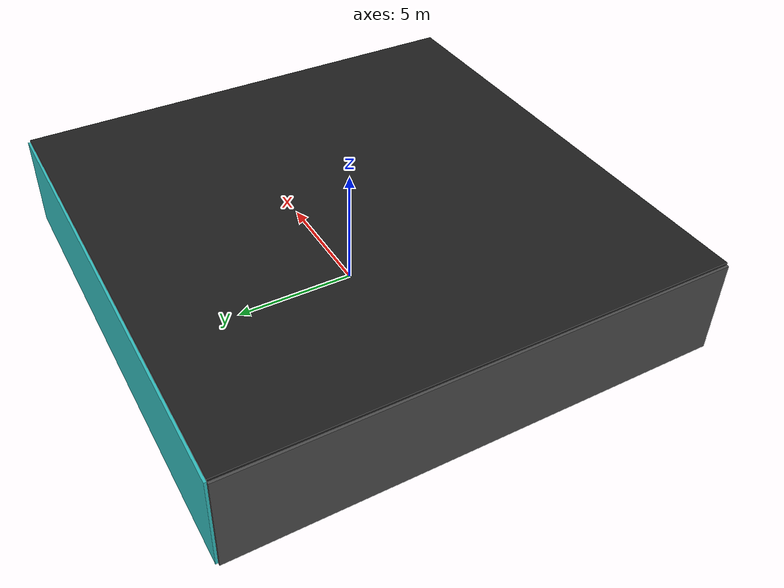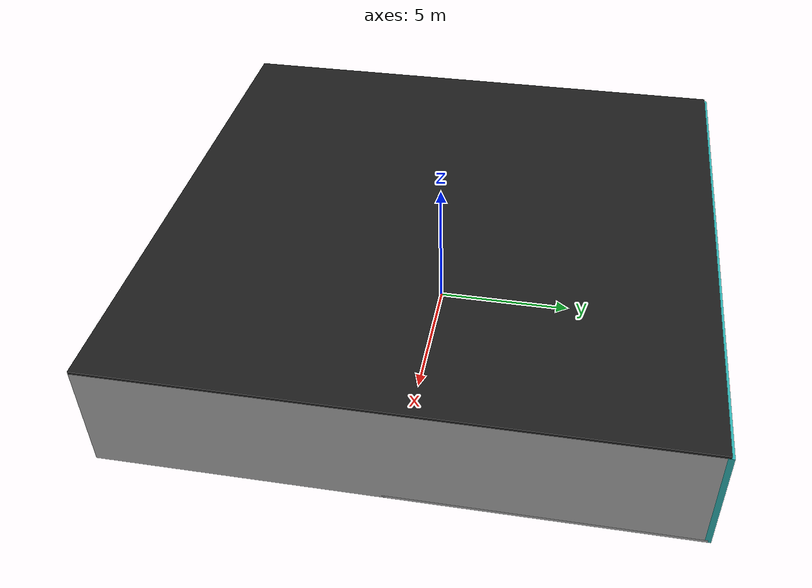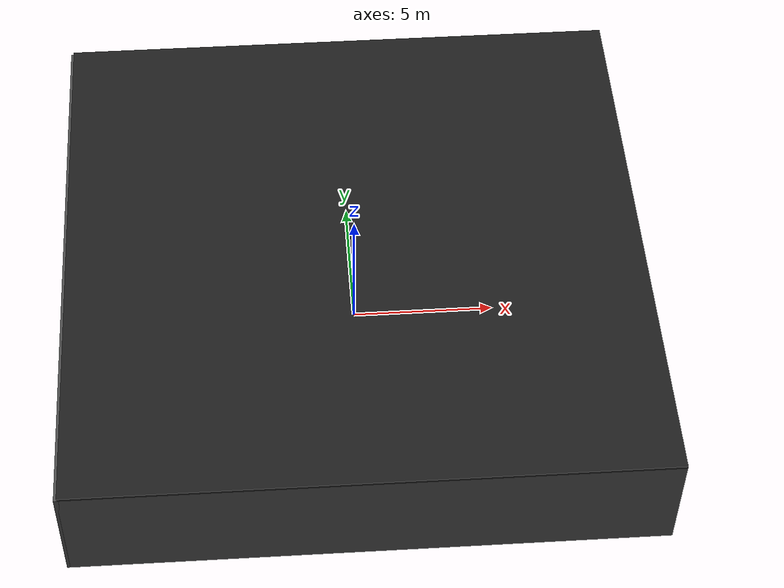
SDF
<sdf version="1.4">
 <world name="default">
  <physics type="ode">
   <max_step_size>0.001</max_step_size>
   <real_time_factor>1</real_time_factor>
   <real_time_update_rate>1000</real_time_update_rate>
   <gravity>0 0 -9.8</gravity>
  </physics>
  <scene><ambient>0.4 0.4 0.4 1</ambient><background>0.7 0.7 0.7 1</background><shadows>1</shadows></scene>
  <model name="Surrounding">
   <static>1</static>
   <link name="Ceiling">
    <collision name="Ceiling_Collision"><geometry><box><size>20 20 0.1</size></box></geometry></collision>
    <visual name="Ceiling_Visual">
     <geometry><box><size>20 20 0.1</size></box></geometry>
     <material>
      <script><uri>file://media/materials/scripts/gazebo.material</uri><name>Gazebo/Black</name></script>
     </material>
    </visual>
    <pose>0 0 4.05 0 0 0</pose>
   </link>
   <link name="Wall_South">
    <collision name="Wall_South_Collision">
     <geometry><box><size>20 0 4</size></box></geometry>
     <pose>0 0 2 0 -0 0</pose>
    </collision>
    <visual name="Wall_South_Visual">
     <pose>0 0 2 0 -0 0</pose>
     <geometry><box><size>20 0 4</size></box></geometry>
     <material>
      <script><uri>file://media/materials/scripts/gazebo.material</uri><name>Gazebo/DarkGrey</name></script>
     </material>
    </visual>
    <velocity_decay><linear>0</linear><angular>0</angular></velocity_decay>
    <pose>0 -10 0 0 -0 0</pose>
   </link>
   <link name="Wall_East">
    <collision name="Wall_21_Collision">
     <geometry><box><size>20 0 4</size></box></geometry>
     <pose>0 0 2 0 -0 0</pose>
    </collision>
    <visual name="Wall_21_Visual">
     <pose>0 0 2 0 -0 0</pose>
     <geometry><box><size>20 0 4</size></box></geometry>
     <material>
      <script><uri>file://media/materials/scripts/gazebo.material</uri><name>Gazebo/Pioneer2Body</name></script>
     </material>
    </visual>
    <velocity_decay><linear>0</linear><angular>0</angular></velocity_decay>
    <pose>10 0 0 0 -0 1.5708</pose>
   </link>
   <link name="Wall_North">
    <collision name="Wall_22_Collision">
     <geometry><box><size>20 0.2 4</size></box></geometry>
     <pose>0 0 2 0 -0 0</pose>
    </collision>
    <visual name="Wall_22_Visual">
     <pose>0 0 2 0 -0 0</pose>
     <geometry><box><size>20 0.2 4</size></box></geometry>
     <material>
      <script><uri>file://media/materials/scripts/gazebo.material</uri><name>Gazebo/Turquoise</name></script>
     </material>
    </visual>
    <velocity_decay><linear>0</linear><angular>0</angular></velocity_decay>
    <pose>0 10 0 0 -0 0</pose>
   </link>
   <link name="Wall_West">
    <collision name="Wall_23_Collision">
     <geometry><box><size>20 0.2 4</size></box></geometry>
     <pose>0 0 2 0 -0 0</pose>
    </collision>
    <visual name="Wall_23_Visual">
     <pose>0 0 2 0 -0 0</pose>
     <geometry><box><size>20 0.2 4</size></box></geometry>
     <material>
      <script><uri>file://media/materials/scripts/gazebo.material</uri><name>Gazebo/Road</name></script>
     </material>
    </visual>
    <velocity_decay><linear>0</linear><angular>0</angular></velocity_decay>
    <pose>-10 0 0 0 0 -1.5708</pose>
   </link>
   <link name="Ground_link">
    <collision name="collision">
     <pose>0 0 .05 0 -0 0</pose>
     <geometry><box><size>20 20 0.1</size></box></geometry>
    </collision>
    <visual name="visual">
     <pose>0 0 .05 0 -0 0</pose>
     <geometry><box><size>20 20 0.1</size></box></geometry>
     <material>
      <script><uri>file://media/materials/scripts/gazebo.material</uri><name>Gazebo/CloudySky</name></script>
     </material>
    </visual>
   </link>
   <static>1</static>
  </model>
  <spherical_coordinates>
   <surface_model>EARTH_WGS84</surface_model>
   <latitude_deg>0</latitude_deg>
   <longitude_deg>0</longitude_deg>
   <elevation>0</elevation>
   <heading_deg>0</heading_deg>
  </spherical_coordinates>
  <light name="lightball_0" type="diffuse">
   <diffuse>0.8 0.8 0.8 1</diffuse>
   <specular>0.2 0.2 0.2 1</specular>
   <attenuation>
    <range>100</range>
    <constant>0.7</constant>
    <linear>0.01</linear>
    <quadratic>0.001</quadratic>
   </attenuation>
   <direction>-0.5 0.1 -0.9</direction>
   <pose>-6.88804435154 2.95939451272 2.43655617378 0 0 0</pose>
  </light>
  <light name="lightball_1" type="diffuse">
   <diffuse>0.8 0.8 0.8 1</diffuse>
   <specular>0.2 0.2 0.2 1</specular>
   <attenuation>
    <range>100</range>
    <constant>0.7</constant>
    <linear>0.01</linear>
    <quadratic>0.001</quadratic>
   </attenuation>
   <direction>-0.5 0.1 -0.9</direction>
   <pose>-1.96618549936 -3.92178606714 0.653226356603 0 0 0</pose>
  </light>
  <light name="lightball_2" type="diffuse">
   <diffuse>0.8 0.8 0.8 1</diffuse>
   <specular>0.2 0.2 0.2 1</specular>
   <attenuation>
    <range>100</range>
    <constant>0.7</constant>
    <linear>0.01</linear>
    <quadratic>0.001</quadratic>
   </attenuation>
   <direction>-0.5 0.1 -0.9</direction>
   <pose>0.938429356033 6.35929345416 3.33739687591 0 0 0</pose>
  </light>
  <light name="lightball_3" type="diffuse">
   <diffuse>0.8 0.8 0.8 1</diffuse>
   <specular>0.2 0.2 0.2 1</specular>
   <attenuation>
    <range>100</range>
    <constant>0.7</constant>
    <linear>0.01</linear>
    <quadratic>0.001</quadratic>
   </attenuation>
   <direction>-0.5 0.1 -0.9</direction>
   <pose>-4.11267021039 5.80318109291 1.04351372374 0 0 0</pose>
  </light>
  <light name="lightball_4" type="diffuse">
   <diffuse>0.8 0.8 0.8 1</diffuse>
   <specular>0.2 0.2 0.2 1</specular>
   <attenuation>
    <range>100</range>
    <constant>0.7</constant>
    <linear>0.01</linear>
    <quadratic>0.001</quadratic>
   </attenuation>
   <direction>-0.5 0.1 -0.9</direction>
   <pose>7.05376744588 -7.37100750545 1.72425819936 0 0 0</pose>
  </light>
  <light name="lightball_5" type="diffuse">
   <diffuse>0.8 0.8 0.8 1</diffuse>
   <specular>0.2 0.2 0.2 1</specular>
   <attenuation>
    <range>100</range>
    <constant>0.7</constant>
    <linear>0.01</linear>
    <quadratic>0.001</quadratic>
   </attenuation>
   <direction>-0.5 0.1 -0.9</direction>
   <pose>0.886035826528 -0.76811675413 0.616291134655 0 0 0</pose>
  </light>
  <light name="lightball_6" type="diffuse">
   <diffuse>0.8 0.8 0.8 1</diffuse>
   <specular>0.2 0.2 0.2 1</specular>
   <attenuation>
    <range>100</range>
    <constant>0.7</constant>
    <linear>0.01</linear>
    <quadratic>0.001</quadratic>
   </attenuation>
   <direction>-0.5 0.1 -0.9</direction>
   <pose>2.97504494531 0.857251126162 3.00323591373 0 0 0</pose>
  </light>
  <light name="lightball_7" type="diffuse">
   <diffuse>0.8 0.8 0.8 1</diffuse>
   <specular>0.2 0.2 0.2 1</specular>
   <attenuation>
    <range>100</range>
    <constant>0.7</constant>
    <linear>0.01</linear>
    <quadratic>0.001</quadratic>
   </attenuation>
   <direction>-0.5 0.1 -0.9</direction>
   <pose>3.74305426944 -8.12828023312 0.901581456688 0 0 0</pose>
  </light>
  <light name="lightball_8" type="diffuse">
   <diffuse>0.8 0.8 0.8 1</diffuse>
   <specular>0.2 0.2 0.2 1</specular>
   <attenuation>
    <range>100</range>
    <constant>0.7</constant>
    <linear>0.01</linear>
    <quadratic>0.001</quadratic>
   </attenuation>
   <direction>-0.5 0.1 -0.9</direction>
   <pose>7.27380647711 6.53738159256 2.09553405814 0 0 0</pose>
  </light>
  <light name="lightball_9" type="diffuse">
   <diffuse>0.8 0.8 0.8 1</diffuse>
   <specular>0.2 0.2 0.2 1</specular>
   <attenuation>
    <range>100</range>
    <constant>0.7</constant>
    <linear>0.01</linear>
    <quadratic>0.001</quadratic>
   </attenuation>
   <direction>-0.5 0.1 -0.9</direction>
   <pose>3.71050453105 9.988907298 2.44265798747 0 0 0</pose>
  </light>
  <light name="lightball_10" type="diffuse">
   <diffuse>0.8 0.8 0.8 1</diffuse>
   <specular>0.2 0.2 0.2 1</specular>
   <attenuation>
    <range>100</range>
    <constant>0.7</constant>
    <linear>0.01</linear>
    <quadratic>0.001</quadratic>
   </attenuation>
   <direction>-0.5 0.1 -0.9</direction>
   <pose>1.48064506258 -6.98459322989 2.65456334551 0 0 0</pose>
  </light>
  <light name="lightball_11" type="diffuse">
   <diffuse>0.8 0.8 0.8 1</diffuse>
   <specular>0.2 0.2 0.2 1</specular>
   <attenuation>
    <range>100</range>
    <constant>0.7</constant>
    <linear>0.01</linear>
    <quadratic>0.001</quadratic>
   </attenuation>
   <direction>-0.5 0.1 -0.9</direction>
   <pose>0.783905586925 8.30014109483 3.36768620476 0 0 0</pose>
  </light>
  <light name="lightball_12" type="diffuse">
   <diffuse>0.8 0.8 0.8 1</diffuse>
   <specular>0.2 0.2 0.2 1</specular>
   <attenuation>
    <range>100</range>
    <constant>0.7</constant>
    <linear>0.01</linear>
    <quadratic>0.001</quadratic>
   </attenuation>
   <direction>-0.5 0.1 -0.9</direction>
   <pose>-1.49627237705 -1.06978314345 2.88461121508 0 0 0</pose>
  </light>
  <light name="lightball_13" type="diffuse">
   <diffuse>0.8 0.8 0.8 1</diffuse>
   <specular>0.2 0.2 0.2 1</specular>
   <attenuation>
    <range>100</range>
    <constant>0.7</constant>
    <linear>0.01</linear>
    <quadratic>0.001</quadratic>
   </attenuation>
   <direction>-0.5 0.1 -0.9</direction>
   <pose>8.34965497074 2.95221550097 2.62826543241 0 0 0</pose>
  </light>
  <include><uri>model://table</uri><pose>-7.79277181666 3.77150095276 0 0 0 1.09820837656</pose></include>
  <include><uri>model://cabinet</uri><pose>-2.02901190084 -5.12822484376 0 0 0 2.59680264604</pose></include>
  <include><uri>model://table</uri><pose>0.787301692686 -2.46847132342 0 0 0 2.13846128379</pose></include>
  <include>
   <uri>model://robocup_3Dsim_goal</uri>
   <pose>5.42695142284 3.68003451848 0 0 0 1.64291635109</pose>
  </include>
  <include>
   <uri>model://robocup_3Dsim_goal</uri>
   <pose>7.075665881 -2.4388299332 0 0 0 1.44019442622</pose>
  </include>
 </world>
</sdf>

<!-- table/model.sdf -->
<sdf version="1.5">
  <model name="table">
    <static>true</static>
    <link name="link">
      <collision name="surface">
        <pose>0 0 1.0 0 0 0</pose>
        <geometry>
          <box>
            <size>1.5 0.8 0.03</size>
          </box>
        </geometry>
        <surface>
          <friction>
            <ode>
              <mu>0.6</mu>
              <mu2>0.6</mu2>
            </ode>
          </friction>
        </surface>
      </collision>
      <visual name="visual1">
        <pose>0 0 1.0 0 0 0</pose>
        <geometry>
          <box>
            <size>1.5 0.8 0.03</size>
          </box>
        </geometry>
        <material>
          <script>
            <uri>model://media/materials/scripts/gazebo.material</uri>
            <name>Gazebo/Wood</name>
          </script>
        </material>
      </visual>
      <collision name="front_left_leg">
        <pose>0.68 0.38 0.5 0 0 0</pose>
        <geometry>
          <cylinder>
            <radius>0.02</radius>
            <length>1.0</length>
          </cylinder>
        </geometry>
      </collision>
      <visual name="front_left_leg">
        <pose>0.68 0.38 0.5 0 0 0</pose>
        <geometry>
          <cylinder>
            <radius>0.02</radius>
            <length>1.0</length>
          </cylinder>
        </geometry>
        <material>
          <script>
            <uri>model://media/materials/scripts/gazebo.material</uri>
            <name>Gazebo/Grey</name>
          </script>
        </material>
      </visual>
      <collision name="front_right_leg">
        <pose>0.68 -0.38 0.5 0 0 0</pose>
        <geometry>
          <cylinder>
            <radius>0.02</radius>
            <length>1.0</length>
          </cylinder>
        </geometry>
      </collision>
      <visual name="front_right_leg">
        <pose>0.68 -0.38 0.5 0 0 0</pose>
        <geometry>
          <cylinder>
            <radius>0.02</radius>
            <length>1.0</length>
          </cylinder>
        </geometry>
        <material>
          <script>
            <uri>model://media/materials/scripts/gazebo.material</uri>
            <name>Gazebo/Grey</name>
          </script>
        </material>
      </visual>
      <collision name="back_right_leg">
        <pose>-0.68 -0.38 0.5 0 0 0</pose>
        <geometry>
          <cylinder>
            <radius>0.02</radius>
            <length>1.0</length>
          </cylinder>
        </geometry>
      </collision>
      <visual name="back_right_leg">
        <pose>-0.68 -0.38 0.5 0 0 0</pose>
        <geometry>
          <cylinder>
            <radius>0.02</radius>
            <length>1.0</length>
          </cylinder>
        </geometry>
        <material>
          <script>
            <uri>model://media/materials/scripts/gazebo.material</uri>
            <name>Gazebo/Grey</name>
          </script>
        </material>
      </visual>
      <collision name="back_left_leg">
        <pose>-0.68 0.38 0.5 0 0 0</pose>
        <geometry>
          <cylinder>
            <radius>0.02</radius>
            <length>1.0</length>
          </cylinder>
        </geometry>
      </collision>
      <visual name="back_left_leg">
        <pose>-0.68 0.38 0.5 0 0 0</pose>
        <geometry>
          <cylinder>
            <radius>0.02</radius>
            <length>1.0</length>
          </cylinder>
        </geometry>
        <material>
          <script>
            <uri>model://media/materials/scripts/gazebo.material</uri>
            <name>Gazebo/Grey</name>
          </script>
        </material>
      </visual>
    </link>
  </model>
</sdf>

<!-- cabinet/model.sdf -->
<sdf version="1.5">
  <model name="cabinet">
    <static>true</static>
    <link name="cabinet_bottom_plate">
      <inertial>
        <pose>0 0 -1 0 0 0</pose>
        <inertia>
          <ixx>2.050000</ixx>
          <ixy>0</ixy>
          <ixz>0</ixz>
          <iyy>2.050000</iyy>
          <iyz>0</iyz>
          <izz>2.050000</izz>
        </inertia>
        <mass>25.000000</mass>
      </inertial>
      <collision name="cabinet_bottom_plate_geom">
        <pose>0 0 0.010000 0 0 0</pose>
        <geometry>
          <box>
            <size>0.450000 0.450000 0.020000</size>
          </box>
        </geometry>
      </collision>
      <visual name="cabinet_bottom_plate_geom_visual">
        <pose>0 0 0.010000 0 0 0</pose>
        <geometry>
          <box>
            <size>0.450000 0.450000 0.020000</size>
          </box>
        </geometry>
        <material>
          <script>
            <uri>model://media/materials/scripts/gazebo.material</uri>
            <name>Gazebo/Wood</name>
          </script>
        </material>
      </visual>
      <collision name="cabinet_bottom_plate_geom_cabinet_back_plate">
        <pose>0.235000 0 0.510000 0 0 0</pose>
        <geometry>
          <box>
            <size>0.020000 0.450000 1.020000</size>
          </box>
        </geometry>
      </collision>
      <visual name="cabinet_bottom_plate_geom_cabinet_back_plate_visual">
        <pose>0.235000 0 0.510000 0 0 0</pose>
        <geometry>
          <box>
            <size>0.020000 0.450000 1.020000</size>
          </box>
        </geometry>
        <material>
          <script>
            <uri>model://media/materials/scripts/gazebo.material</uri>
            <name>Gazebo/Wood</name>
          </script>
        </material>
      </visual>
      <collision name="cabinet_bottom_plate_geom_cabinet_left_plate">
        <pose>0 0.235000 0.510000 0 0 0</pose>
        <geometry>
          <box>
            <size>0.450000 0.020000 1.020000</size>
          </box>
        </geometry>
      </collision>
      <visual name="cabinet_bottom_plate_geom_cabinet_left_plate_visual">
        <pose>0 0.235000 0.510000 0 0 0</pose>
        <geometry>
          <box>
            <size>0.450000 0.020000 1.020000</size>
          </box>
        </geometry>
        <material>
          <script>
            <uri>model://media/materials/scripts/gazebo.material</uri>
            <name>Gazebo/Wood</name>
          </script>
        </material>
      </visual>
      <collision name="cabinet_bottom_plate_geom_cabinet_middle_plate">
        <pose>0 0 0.510000 0 0 0</pose>
        <geometry>
          <box>
            <size>0.450000 0.450000 0.020000</size>
          </box>
        </geometry>
      </collision>
      <visual name="cabinet_bottom_plate_geom_cabinet_middle_plate_visual">
        <pose>0 0 0.510000 0 0 0</pose>
        <geometry>
          <box>
            <size>0.450000 0.450000 0.020000</size>
          </box>
        </geometry>
        <material>
          <script>
            <uri>model://media/materials/scripts/gazebo.material</uri>
            <name>Gazebo/Wood</name>
          </script>
        </material>
      </visual>
      <collision name="cabinet_bottom_plate_geom_cabinet_right_plate">
        <pose>0 -0.235000 0.510000 0 0 0</pose>
        <geometry>
          <box>
            <size>0.450000 0.020000 1.020000</size>
          </box>
        </geometry>
      </collision>
      <visual name="cabinet_bottom_plate_geom_cabinet_right_plate_visual">
        <pose>0 -0.235000 0.510000 0 0 0</pose>
        <geometry>
          <box>
            <size>0.450000 0.020000 1.020000</size>
          </box>
        </geometry>
        <material>
          <script>
            <uri>model://media/materials/scripts/gazebo.material</uri>
            <name>Gazebo/Wood</name>
          </script>
        </material>
      </visual>
      <collision name="cabinet_bottom_plate_geom_cabinet_top_plate">
        <pose>0 0 1.010000 0 0 0</pose>
        <geometry>
          <box>
            <size>0.450000 0.450000 0.020000</size>
          </box>
        </geometry>
      </collision>
      <visual name="cabinet_bottom_plate_geom_cabinet_top_plate_visual">
        <pose>0 0 1.010000 0 0 0</pose>
        <geometry>
          <box>
            <size>0.450000 0.450000 0.020000</size>
          </box>
        </geometry>
        <material>
          <script>
            <uri>model://media/materials/scripts/gazebo.material</uri>
            <name>Gazebo/Wood</name>
          </script>
        </material>
      </visual>
    </link>
  </model>
</sdf>

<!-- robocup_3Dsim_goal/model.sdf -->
<sdf version="1.5">
  <model name="robocup_3d_goal">
    <static>true</static>
    <link name="left_post">
      <pose>0 1.05 0.45 0 0 0</pose>
      <collision name="collision">
        <geometry>
          <cylinder>
            <radius>0.05</radius>
            <length>0.9</length>
          </cylinder>
        </geometry>
      </collision>
      <visual name="visual">
        <geometry>
          <cylinder>
            <radius>0.05</radius>
            <length>0.9</length>
          </cylinder>
        </geometry>
        <material>
          <script>
            <uri>file://media/materials/scripts/gazebo.material</uri>
            <name>Gazebo/ZincYellow</name>
          </script>
        </material>
      </visual>
    </link>
    <link name="left_support_horiz_lower">
      <pose>0.30 1.05 0.01 0 0 0</pose>
      <collision name="collision">
        <geometry>
          <box>
            <size>0.50 0.02 0.02</size>
          </box>
        </geometry>
      </collision>
      <visual name="visual">
        <geometry>
          <box>
            <size>0.50 0.02 0.02</size>
          </box>
        </geometry>
        <material>
          <script>
            <uri>file://media/materials/scripts/gazebo.material</uri>
            <name>Gazebo/White</name>
          </script>
        </material>
      </visual>
    </link>
    <link name="left_support_horiz_upper">
      <pose>0.30 1.05 0.79 0 0 0</pose>
      <collision name="collision">
        <geometry>
          <box>
            <size>0.50 0.02 0.02</size>
          </box>
        </geometry>
      </collision>
      <visual name="visual">
        <geometry>
          <box>
            <size>0.50 0.02 0.02</size>
          </box>
        </geometry>
        <material>
          <script>
            <uri>file://media/materials/scripts/gazebo.material</uri>
            <name>Gazebo/White</name>
          </script>
        </material>
      </visual>
    </link>
    <link name="left_support_vertical">
      <pose>0.56 1.05 0.4 0 1.5708 0</pose>
      <collision name="collision">
        <geometry>
          <box>
            <size>0.80 0.02 0.02</size>
          </box>
        </geometry>
      </collision>
      <visual name="visual">
        <geometry>
          <box>
            <size>0.80 0.02 0.02</size>
          </box>
        </geometry>
        <material>
          <script>
            <uri>file://media/materials/scripts/gazebo.material</uri>
            <name>Gazebo/White</name>
          </script>
        </material>
      </visual>
    </link>
    <link name="right_support_horiz_lower">
      <pose>0.30 -1.05 0.01 0 0 0</pose>
      <collision name="collision">
        <geometry>
          <box>
            <size>0.50 0.02 0.02</size>
          </box>
        </geometry>
      </collision>
      <visual name="visual">
        <geometry>
          <box>
            <size>0.50 0.02 0.02</size>
          </box>
        </geometry>
        <material>
          <script>
            <uri>file://media/materials/scripts/gazebo.material</uri>
            <name>Gazebo/White</name>
          </script>
        </material>
      </visual>
    </link>
    <link name="right_support_horiz_upper">
      <pose>0.30 -1.05 0.79 0 0 0</pose>
      <collision name="collision">
        <geometry>
          <box>
            <size>0.50 0.02 0.02</size>
          </box>
        </geometry>
      </collision>
      <visual name="visual">
        <geometry>
          <box>
            <size>0.50 0.02 0.02</size>
          </box>
        </geometry>
        <material>
          <script>
            <uri>file://media/materials/scripts/gazebo.material</uri>
            <name>Gazebo/White</name>
          </script>
        </material>
      </visual>
    </link>
    <link name="right_support_vertical">
      <pose>0.56 -1.05 0.4 0 1.5708 0</pose>
      <collision name="collision">
        <geometry>
          <box>
            <size>0.80 0.02 0.02</size>
          </box>
        </geometry>
      </collision>
      <visual name="visual">
        <geometry>
          <box>
            <size>0.80 0.02 0.02</size>
          </box>
        </geometry>
        <material>
          <script>
            <uri>file://media/materials/scripts/gazebo.material</uri>
            <name>Gazebo/White</name>
          </script>
        </material>
      </visual>
    </link>
    <link name="center_support_horiz_lower">
      <pose>0.56 0 0.01 0 1.5708 0</pose>
      <collision name="collision">
        <geometry>
          <box>
            <size>0.02 2.08 0.02</size>
          </box>
        </geometry>
      </collision>
      <visual name="visual">
        <geometry>
          <box>
            <size>0.02 2.08 0.02</size>
          </box>
        </geometry>
        <material>
          <script>
            <uri>file://media/materials/scripts/gazebo.material</uri>
            <name>Gazebo/White</name>
          </script>
        </material>
      </visual>
    </link>
    <link name="center_support_horiz_upper">
      <pose>0.56 0 0.79 0 1.5708 0</pose>
      <collision name="collision">
        <geometry>
          <box>
            <size>0.02 2.08 0.02</size>
          </box>
        </geometry>
      </collision>
      <visual name="visual">
        <geometry>
          <box>
            <size>0.02 2.08 0.02</size>
          </box>
        </geometry>
        <material>
          <script>
            <uri>file://media/materials/scripts/gazebo.material</uri>
            <name>Gazebo/White</name>
          </script>
        </material>
      </visual>
    </link>
    <link name="right_post">
      <pose>0 -1.05 0.45 0 0 0</pose>
      <collision name="collision">
        <geometry>
          <cylinder>
            <radius>0.05</radius>
            <length>0.9</length>
          </cylinder>
        </geometry>
      </collision>
      <visual name="visual">
        <geometry>
          <cylinder>
            <radius>0.05</radius>
            <length>0.9</length>
          </cylinder>
        </geometry>
        <material>
          <script>
            <uri>file://media/materials/scripts/gazebo.material</uri>
            <name>Gazebo/ZincYellow</name>
          </script>
        </material>
      </visual>
    </link>
    <link name="crossbar">
      <pose>0 0 0.85 1.57 1.57 0</pose>
      <collision name="collision">
        <geometry>
          <cylinder>
            <radius>0.05</radius>
            <length>2.0</length>
          </cylinder>
        </geometry>
      </collision>
      <visual name="visual">
        <geometry>
          <cylinder>
            <radius>0.05</radius>
            <length>2.0</length>
          </cylinder>
        </geometry>
        <material>
          <script>
            <uri>file://media/materials/scripts/gazebo.material</uri>
            <name>Gazebo/ZincYellow</name>
          </script>
        </material>
      </visual>
    </link>
    <link name="center_net">
      <pose>0.56 0 0.40 0 0 0</pose>
      <collision name="collision">
        <geometry>
          <box>
            <size>0.01 2.1 0.80</size>
          </box>
        </geometry>
      </collision>
      <visual name="visual">
        <geometry>
          <box>
            <size>0.01 2.1 0.80</size>
          </box>
        </geometry>
        <material>
          <script>
            <uri>model://../model_source/models/robocup09_spl_field/materials/scripts/</uri>
            <uri>model://../model_source/models/robocup09_spl_field/materials/textures/</uri>
            <name>RoboCup/Net</name>
          </script>
        </material>
      </visual>
    </link>
    <link name="left_net">
      <pose>0.30 1.05 0.40 0 0 0</pose>
      <collision name="collision">
        <geometry>
          <box>
            <size>0.50 0.01 0.76</size>
          </box>
        </geometry>
      </collision>
      <visual name="visual">
        <geometry>
          <box>
            <size>0.50 0.01 0.76</size>
          </box>
        </geometry>
        <material>
          <script>
            <uri>model://../model_source/models/robocup09_spl_field/materials/scripts/</uri>
            <uri>model://../model_source/models/robocup09_spl_field/materials/textures/</uri>
            <name>RoboCup/Net</name>
          </script>
        </material>
      </visual>
    </link>
    <link name="right_net">
      <pose>0.30 -1.05 0.40 0 0 0</pose>
      <collision name="collision">
        <geometry>
          <box>
            <size>0.50 0.01 0.76</size>
          </box>
        </geometry>
      </collision>
      <visual name="visual">
        <geometry>
          <box>
            <size>0.50 0.01 0.76</size>
          </box>
        </geometry>
        <material>
          <script>
            <uri>model://../model_source/models/robocup09_spl_field/materials/scripts/</uri>
            <uri>model://../model_source/models/robocup09_spl_field/materials/textures/</uri>
            <name>RoboCup/Net</name>
          </script>
        </material>
      </visual>
    </link>
  </model>
</sdf>
